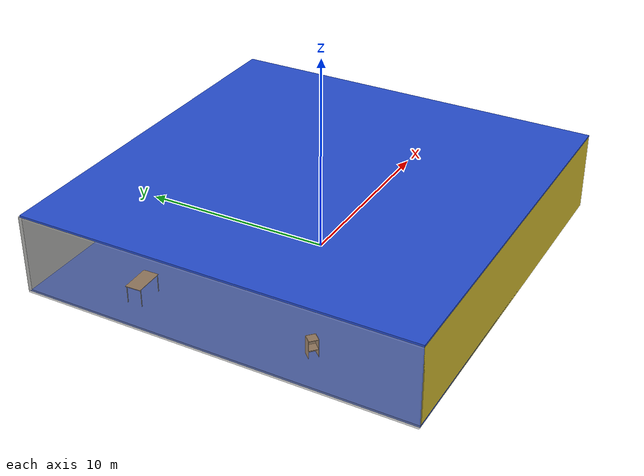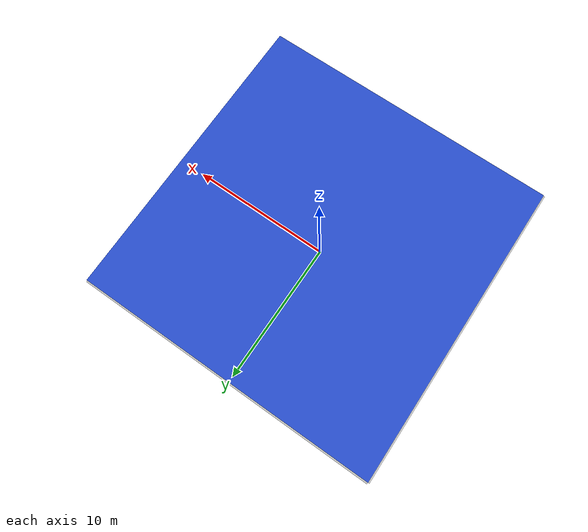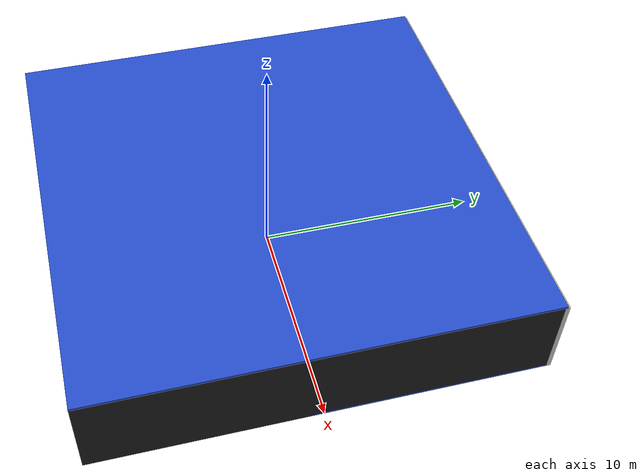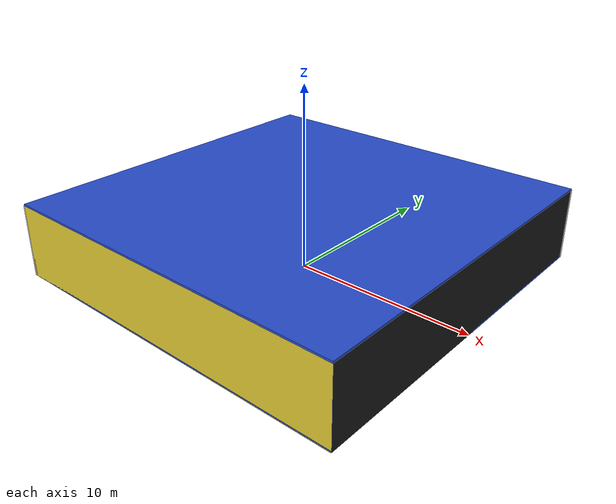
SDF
<sdf version="1.4">
 <world name="default">
  <physics type="ode">
   <max_step_size>0.001</max_step_size>
   <real_time_factor>1</real_time_factor>
   <real_time_update_rate>1000</real_time_update_rate>
   <gravity>0 0 -9.8</gravity>
  </physics>
  <scene><ambient>0.4 0.4 0.4 1</ambient><background>0.7 0.7 0.7 1</background><shadows>1</shadows></scene>
  <model name="Surrounding">
   <static>1</static>
   <link name="Ceiling">
    <collision name="Ceiling_Collision"><geometry><box><size>20 20 0.1</size></box></geometry></collision>
    <visual name="Ceiling_Visual">
     <geometry><box><size>20 20 0.1</size></box></geometry>
     <material>
      <script><uri>file://media/materials/scripts/gazebo.material</uri><name>Gazebo/BlueGlow</name></script>
     </material>
    </visual>
    <pose>0 0 4.05 0 0 0</pose>
   </link>
   <link name="Wall_South">
    <collision name="Wall_South_Collision">
     <geometry><box><size>20 0 4</size></box></geometry>
     <pose>0 0 2 0 -0 0</pose>
    </collision>
    <visual name="Wall_South_Visual">
     <pose>0 0 2 0 -0 0</pose>
     <geometry><box><size>20 0 4</size></box></geometry>
     <material>
      <script><uri>file://media/materials/scripts/gazebo.material</uri><name>Gazebo/ZincYellow</name></script>
     </material>
    </visual>
    <velocity_decay><linear>0</linear><angular>0</angular></velocity_decay>
    <pose>0 -10 0 0 -0 0</pose>
   </link>
   <link name="Wall_East">
    <collision name="Wall_21_Collision">
     <geometry><box><size>20 0 4</size></box></geometry>
     <pose>0 0 2 0 -0 0</pose>
    </collision>
    <visual name="Wall_21_Visual">
     <pose>0 0 2 0 -0 0</pose>
     <geometry><box><size>20 0 4</size></box></geometry>
     <material>
      <script><uri>file://media/materials/scripts/gazebo.material</uri><name>Gazebo/FlatBlack</name></script>
     </material>
    </visual>
    <velocity_decay><linear>0</linear><angular>0</angular></velocity_decay>
    <pose>10 0 0 0 -0 1.5708</pose>
   </link>
   <link name="Wall_North">
    <collision name="Wall_22_Collision">
     <geometry><box><size>20 0.2 4</size></box></geometry>
     <pose>0 0 2 0 -0 0</pose>
    </collision>
    <visual name="Wall_22_Visual">
     <pose>0 0 2 0 -0 0</pose>
     <geometry><box><size>20 0.2 4</size></box></geometry>
     <material>
      <script><uri>file://media/materials/scripts/gazebo.material</uri><name>Gazebo/CeilingTiled</name></script>
     </material>
    </visual>
    <velocity_decay><linear>0</linear><angular>0</angular></velocity_decay>
    <pose>0 10 0 0 -0 0</pose>
   </link>
   <link name="Wall_West">
    <collision name="Wall_23_Collision">
     <geometry><box><size>20 0.2 4</size></box></geometry>
     <pose>0 0 2 0 -0 0</pose>
    </collision>
    <visual name="Wall_23_Visual">
     <pose>0 0 2 0 -0 0</pose>
     <geometry><box><size>20 0.2 4</size></box></geometry>
     <material>
      <script><uri>file://media/materials/scripts/gazebo.material</uri><name>Gazebo/GreyTransparent</name></script>
     </material>
    </visual>
    <velocity_decay><linear>0</linear><angular>0</angular></velocity_decay>
    <pose>-10 0 0 0 0 -1.5708</pose>
   </link>
   <link name="Ground_link">
    <collision name="collision">
     <pose>0 0 .05 0 -0 0</pose>
     <geometry><box><size>20 20 0.1</size></box></geometry>
    </collision>
    <visual name="visual">
     <pose>0 0 .05 0 -0 0</pose>
     <geometry><box><size>20 20 0.1</size></box></geometry>
     <material>
      <script><uri>file://media/materials/scripts/gazebo.material</uri><name>Gazebo/BlueLaser</name></script>
     </material>
    </visual>
   </link>
   <static>1</static>
  </model>
  <spherical_coordinates>
   <surface_model>EARTH_WGS84</surface_model>
   <latitude_deg>0</latitude_deg>
   <longitude_deg>0</longitude_deg>
   <elevation>0</elevation>
   <heading_deg>0</heading_deg>
  </spherical_coordinates>
  <light name="lightball_0" type="diffuse">
   <diffuse>0.8 0.8 0.8 1</diffuse>
   <specular>0.2 0.2 0.2 1</specular>
   <attenuation>
    <range>100</range>
    <constant>0.7</constant>
    <linear>0.01</linear>
    <quadratic>0.001</quadratic>
   </attenuation>
   <direction>-0.5 0.1 -0.9</direction>
   <pose>3.79000957891 7.24930203835 3.64875858617 0 0 0</pose>
  </light>
  <light name="lightball_1" type="diffuse">
   <diffuse>0.8 0.8 0.8 1</diffuse>
   <specular>0.2 0.2 0.2 1</specular>
   <attenuation>
    <range>100</range>
    <constant>0.7</constant>
    <linear>0.01</linear>
    <quadratic>0.001</quadratic>
   </attenuation>
   <direction>-0.5 0.1 -0.9</direction>
   <pose>6.70375144997 -0.203856949543 2.40945621388 0 0 0</pose>
  </light>
  <light name="lightball_2" type="diffuse">
   <diffuse>0.8 0.8 0.8 1</diffuse>
   <specular>0.2 0.2 0.2 1</specular>
   <attenuation>
    <range>100</range>
    <constant>0.7</constant>
    <linear>0.01</linear>
    <quadratic>0.001</quadratic>
   </attenuation>
   <direction>-0.5 0.1 -0.9</direction>
   <pose>-5.19576325831 -2.95219594334 2.34113002918 0 0 0</pose>
  </light>
  <include><uri>model://cabinet</uri><pose>-8.05094145501 -3.98393761004 0 0 0 0.822741563429</pose></include>
  <include><uri>model://table</uri><pose>-7.96010215349 5.00120348285 0 0 0 0.0323337058129</pose></include>
  <include>
   <uri>model://construction_cone</uri>
   <pose>-3.99601317425 -1.99402172859 0 0 0 2.15102292143</pose>
  </include>
  <include><uri>model://cabinet</uri><pose>-1.07992107423 -7.77385683641 0 0 0 2.87506760043</pose></include>
  <include>
   <uri>model://robocup_3Dsim_goal</uri>
   <pose>-1.03152023283 1.79302490444 0 0 0 1.48839504922</pose>
  </include>
  <include>
   <uri>model://textured_shapes</uri>
   <pose>-1.45792484948 7.68894650583 0 0 0 1.7196436809</pose>
  </include>
  <include>
   <uri>model://construction_cone</uri>
   <pose>6.97482221798 -6.96864054851 0 0 0 1.71421908162</pose>
  </include>
  <include><uri>model://cabinet</uri><pose>8.13477761837 7.18343067195 0 0 0 2.56593703962</pose></include>
 </world>
</sdf>

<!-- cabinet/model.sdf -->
<sdf version="1.5">
  <model name="cabinet">
    <static>true</static>
    <link name="cabinet_bottom_plate">
      <inertial>
        <pose>0 0 -1 0 0 0</pose>
        <inertia>
          <ixx>2.050000</ixx>
          <ixy>0</ixy>
          <ixz>0</ixz>
          <iyy>2.050000</iyy>
          <iyz>0</iyz>
          <izz>2.050000</izz>
        </inertia>
        <mass>25.000000</mass>
      </inertial>
      <collision name="cabinet_bottom_plate_geom">
        <pose>0 0 0.010000 0 0 0</pose>
        <geometry>
          <box>
            <size>0.450000 0.450000 0.020000</size>
          </box>
        </geometry>
      </collision>
      <visual name="cabinet_bottom_plate_geom_visual">
        <pose>0 0 0.010000 0 0 0</pose>
        <geometry>
          <box>
            <size>0.450000 0.450000 0.020000</size>
          </box>
        </geometry>
        <material>
          <script>
            <uri>model://media/materials/scripts/gazebo.material</uri>
            <name>Gazebo/Wood</name>
          </script>
        </material>
      </visual>
      <collision name="cabinet_bottom_plate_geom_cabinet_back_plate">
        <pose>0.235000 0 0.510000 0 0 0</pose>
        <geometry>
          <box>
            <size>0.020000 0.450000 1.020000</size>
          </box>
        </geometry>
      </collision>
      <visual name="cabinet_bottom_plate_geom_cabinet_back_plate_visual">
        <pose>0.235000 0 0.510000 0 0 0</pose>
        <geometry>
          <box>
            <size>0.020000 0.450000 1.020000</size>
          </box>
        </geometry>
        <material>
          <script>
            <uri>model://media/materials/scripts/gazebo.material</uri>
            <name>Gazebo/Wood</name>
          </script>
        </material>
      </visual>
      <collision name="cabinet_bottom_plate_geom_cabinet_left_plate">
        <pose>0 0.235000 0.510000 0 0 0</pose>
        <geometry>
          <box>
            <size>0.450000 0.020000 1.020000</size>
          </box>
        </geometry>
      </collision>
      <visual name="cabinet_bottom_plate_geom_cabinet_left_plate_visual">
        <pose>0 0.235000 0.510000 0 0 0</pose>
        <geometry>
          <box>
            <size>0.450000 0.020000 1.020000</size>
          </box>
        </geometry>
        <material>
          <script>
            <uri>model://media/materials/scripts/gazebo.material</uri>
            <name>Gazebo/Wood</name>
          </script>
        </material>
      </visual>
      <collision name="cabinet_bottom_plate_geom_cabinet_middle_plate">
        <pose>0 0 0.510000 0 0 0</pose>
        <geometry>
          <box>
            <size>0.450000 0.450000 0.020000</size>
          </box>
        </geometry>
      </collision>
      <visual name="cabinet_bottom_plate_geom_cabinet_middle_plate_visual">
        <pose>0 0 0.510000 0 0 0</pose>
        <geometry>
          <box>
            <size>0.450000 0.450000 0.020000</size>
          </box>
        </geometry>
        <material>
          <script>
            <uri>model://media/materials/scripts/gazebo.material</uri>
            <name>Gazebo/Wood</name>
          </script>
        </material>
      </visual>
      <collision name="cabinet_bottom_plate_geom_cabinet_right_plate">
        <pose>0 -0.235000 0.510000 0 0 0</pose>
        <geometry>
          <box>
            <size>0.450000 0.020000 1.020000</size>
          </box>
        </geometry>
      </collision>
      <visual name="cabinet_bottom_plate_geom_cabinet_right_plate_visual">
        <pose>0 -0.235000 0.510000 0 0 0</pose>
        <geometry>
          <box>
            <size>0.450000 0.020000 1.020000</size>
          </box>
        </geometry>
        <material>
          <script>
            <uri>model://media/materials/scripts/gazebo.material</uri>
            <name>Gazebo/Wood</name>
          </script>
        </material>
      </visual>
      <collision name="cabinet_bottom_plate_geom_cabinet_top_plate">
        <pose>0 0 1.010000 0 0 0</pose>
        <geometry>
          <box>
            <size>0.450000 0.450000 0.020000</size>
          </box>
        </geometry>
      </collision>
      <visual name="cabinet_bottom_plate_geom_cabinet_top_plate_visual">
        <pose>0 0 1.010000 0 0 0</pose>
        <geometry>
          <box>
            <size>0.450000 0.450000 0.020000</size>
          </box>
        </geometry>
        <material>
          <script>
            <uri>model://media/materials/scripts/gazebo.material</uri>
            <name>Gazebo/Wood</name>
          </script>
        </material>
      </visual>
    </link>
  </model>
</sdf>

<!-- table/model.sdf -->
<sdf version="1.5">
  <model name="table">
    <static>true</static>
    <link name="link">
      <collision name="surface">
        <pose>0 0 1.0 0 0 0</pose>
        <geometry>
          <box>
            <size>1.5 0.8 0.03</size>
          </box>
        </geometry>
        <surface>
          <friction>
            <ode>
              <mu>0.6</mu>
              <mu2>0.6</mu2>
            </ode>
          </friction>
        </surface>
      </collision>
      <visual name="visual1">
        <pose>0 0 1.0 0 0 0</pose>
        <geometry>
          <box>
            <size>1.5 0.8 0.03</size>
          </box>
        </geometry>
        <material>
          <script>
            <uri>model://media/materials/scripts/gazebo.material</uri>
            <name>Gazebo/Wood</name>
          </script>
        </material>
      </visual>
      <collision name="front_left_leg">
        <pose>0.68 0.38 0.5 0 0 0</pose>
        <geometry>
          <cylinder>
            <radius>0.02</radius>
            <length>1.0</length>
          </cylinder>
        </geometry>
      </collision>
      <visual name="front_left_leg">
        <pose>0.68 0.38 0.5 0 0 0</pose>
        <geometry>
          <cylinder>
            <radius>0.02</radius>
            <length>1.0</length>
          </cylinder>
        </geometry>
        <material>
          <script>
            <uri>model://media/materials/scripts/gazebo.material</uri>
            <name>Gazebo/Grey</name>
          </script>
        </material>
      </visual>
      <collision name="front_right_leg">
        <pose>0.68 -0.38 0.5 0 0 0</pose>
        <geometry>
          <cylinder>
            <radius>0.02</radius>
            <length>1.0</length>
          </cylinder>
        </geometry>
      </collision>
      <visual name="front_right_leg">
        <pose>0.68 -0.38 0.5 0 0 0</pose>
        <geometry>
          <cylinder>
            <radius>0.02</radius>
            <length>1.0</length>
          </cylinder>
        </geometry>
        <material>
          <script>
            <uri>model://media/materials/scripts/gazebo.material</uri>
            <name>Gazebo/Grey</name>
          </script>
        </material>
      </visual>
      <collision name="back_right_leg">
        <pose>-0.68 -0.38 0.5 0 0 0</pose>
        <geometry>
          <cylinder>
            <radius>0.02</radius>
            <length>1.0</length>
          </cylinder>
        </geometry>
      </collision>
      <visual name="back_right_leg">
        <pose>-0.68 -0.38 0.5 0 0 0</pose>
        <geometry>
          <cylinder>
            <radius>0.02</radius>
            <length>1.0</length>
          </cylinder>
        </geometry>
        <material>
          <script>
            <uri>model://media/materials/scripts/gazebo.material</uri>
            <name>Gazebo/Grey</name>
          </script>
        </material>
      </visual>
      <collision name="back_left_leg">
        <pose>-0.68 0.38 0.5 0 0 0</pose>
        <geometry>
          <cylinder>
            <radius>0.02</radius>
            <length>1.0</length>
          </cylinder>
        </geometry>
      </collision>
      <visual name="back_left_leg">
        <pose>-0.68 0.38 0.5 0 0 0</pose>
        <geometry>
          <cylinder>
            <radius>0.02</radius>
            <length>1.0</length>
          </cylinder>
        </geometry>
        <material>
          <script>
            <uri>model://media/materials/scripts/gazebo.material</uri>
            <name>Gazebo/Grey</name>
          </script>
        </material>
      </visual>
    </link>
  </model>
</sdf>

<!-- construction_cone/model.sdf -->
<sdf version="1.5">
  <model name="Construction Cone">
    <link name="link">
      <collision name="collision">
        <geometry>
          <mesh>
            <scale>10 10 10</scale>
            <uri>file://isr-testbed/construction_cone/meshes/construction_cone.dae</uri>
          </mesh>
        </geometry>
      </collision>
      <visual name="visual">
        <geometry>
          <mesh>
            <scale>10 10 10</scale>
            <uri>file://isr-testbed/construction_cone/meshes/construction_cone.dae</uri>
          </mesh>
        </geometry>
      </visual>
    </link>
  </model>
</sdf>

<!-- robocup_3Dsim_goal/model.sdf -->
<sdf version="1.5">
  <model name="robocup_3d_goal">
    <static>true</static>
    <link name="left_post">
      <pose>0 1.05 0.45 0 0 0</pose>
      <collision name="collision">
        <geometry>
          <cylinder>
            <radius>0.05</radius>
            <length>0.9</length>
          </cylinder>
        </geometry>
      </collision>
      <visual name="visual">
        <geometry>
          <cylinder>
            <radius>0.05</radius>
            <length>0.9</length>
          </cylinder>
        </geometry>
        <material>
          <script>
            <uri>file://media/materials/scripts/gazebo.material</uri>
            <name>Gazebo/ZincYellow</name>
          </script>
        </material>
      </visual>
    </link>
    <link name="left_support_horiz_lower">
      <pose>0.30 1.05 0.01 0 0 0</pose>
      <collision name="collision">
        <geometry>
          <box>
            <size>0.50 0.02 0.02</size>
          </box>
        </geometry>
      </collision>
      <visual name="visual">
        <geometry>
          <box>
            <size>0.50 0.02 0.02</size>
          </box>
        </geometry>
        <material>
          <script>
            <uri>file://media/materials/scripts/gazebo.material</uri>
            <name>Gazebo/White</name>
          </script>
        </material>
      </visual>
    </link>
    <link name="left_support_horiz_upper">
      <pose>0.30 1.05 0.79 0 0 0</pose>
      <collision name="collision">
        <geometry>
          <box>
            <size>0.50 0.02 0.02</size>
          </box>
        </geometry>
      </collision>
      <visual name="visual">
        <geometry>
          <box>
            <size>0.50 0.02 0.02</size>
          </box>
        </geometry>
        <material>
          <script>
            <uri>file://media/materials/scripts/gazebo.material</uri>
            <name>Gazebo/White</name>
          </script>
        </material>
      </visual>
    </link>
    <link name="left_support_vertical">
      <pose>0.56 1.05 0.4 0 1.5708 0</pose>
      <collision name="collision">
        <geometry>
          <box>
            <size>0.80 0.02 0.02</size>
          </box>
        </geometry>
      </collision>
      <visual name="visual">
        <geometry>
          <box>
            <size>0.80 0.02 0.02</size>
          </box>
        </geometry>
        <material>
          <script>
            <uri>file://media/materials/scripts/gazebo.material</uri>
            <name>Gazebo/White</name>
          </script>
        </material>
      </visual>
    </link>
    <link name="right_support_horiz_lower">
      <pose>0.30 -1.05 0.01 0 0 0</pose>
      <collision name="collision">
        <geometry>
          <box>
            <size>0.50 0.02 0.02</size>
          </box>
        </geometry>
      </collision>
      <visual name="visual">
        <geometry>
          <box>
            <size>0.50 0.02 0.02</size>
          </box>
        </geometry>
        <material>
          <script>
            <uri>file://media/materials/scripts/gazebo.material</uri>
            <name>Gazebo/White</name>
          </script>
        </material>
      </visual>
    </link>
    <link name="right_support_horiz_upper">
      <pose>0.30 -1.05 0.79 0 0 0</pose>
      <collision name="collision">
        <geometry>
          <box>
            <size>0.50 0.02 0.02</size>
          </box>
        </geometry>
      </collision>
      <visual name="visual">
        <geometry>
          <box>
            <size>0.50 0.02 0.02</size>
          </box>
        </geometry>
        <material>
          <script>
            <uri>file://media/materials/scripts/gazebo.material</uri>
            <name>Gazebo/White</name>
          </script>
        </material>
      </visual>
    </link>
    <link name="right_support_vertical">
      <pose>0.56 -1.05 0.4 0 1.5708 0</pose>
      <collision name="collision">
        <geometry>
          <box>
            <size>0.80 0.02 0.02</size>
          </box>
        </geometry>
      </collision>
      <visual name="visual">
        <geometry>
          <box>
            <size>0.80 0.02 0.02</size>
          </box>
        </geometry>
        <material>
          <script>
            <uri>file://media/materials/scripts/gazebo.material</uri>
            <name>Gazebo/White</name>
          </script>
        </material>
      </visual>
    </link>
    <link name="center_support_horiz_lower">
      <pose>0.56 0 0.01 0 1.5708 0</pose>
      <collision name="collision">
        <geometry>
          <box>
            <size>0.02 2.08 0.02</size>
          </box>
        </geometry>
      </collision>
      <visual name="visual">
        <geometry>
          <box>
            <size>0.02 2.08 0.02</size>
          </box>
        </geometry>
        <material>
          <script>
            <uri>file://media/materials/scripts/gazebo.material</uri>
            <name>Gazebo/White</name>
          </script>
        </material>
      </visual>
    </link>
    <link name="center_support_horiz_upper">
      <pose>0.56 0 0.79 0 1.5708 0</pose>
      <collision name="collision">
        <geometry>
          <box>
            <size>0.02 2.08 0.02</size>
          </box>
        </geometry>
      </collision>
      <visual name="visual">
        <geometry>
          <box>
            <size>0.02 2.08 0.02</size>
          </box>
        </geometry>
        <material>
          <script>
            <uri>file://media/materials/scripts/gazebo.material</uri>
            <name>Gazebo/White</name>
          </script>
        </material>
      </visual>
    </link>
    <link name="right_post">
      <pose>0 -1.05 0.45 0 0 0</pose>
      <collision name="collision">
        <geometry>
          <cylinder>
            <radius>0.05</radius>
            <length>0.9</length>
          </cylinder>
        </geometry>
      </collision>
      <visual name="visual">
        <geometry>
          <cylinder>
            <radius>0.05</radius>
            <length>0.9</length>
          </cylinder>
        </geometry>
        <material>
          <script>
            <uri>file://media/materials/scripts/gazebo.material</uri>
            <name>Gazebo/ZincYellow</name>
          </script>
        </material>
      </visual>
    </link>
    <link name="crossbar">
      <pose>0 0 0.85 1.57 1.57 0</pose>
      <collision name="collision">
        <geometry>
          <cylinder>
            <radius>0.05</radius>
            <length>2.0</length>
          </cylinder>
        </geometry>
      </collision>
      <visual name="visual">
        <geometry>
          <cylinder>
            <radius>0.05</radius>
            <length>2.0</length>
          </cylinder>
        </geometry>
        <material>
          <script>
            <uri>file://media/materials/scripts/gazebo.material</uri>
            <name>Gazebo/ZincYellow</name>
          </script>
        </material>
      </visual>
    </link>
    <link name="center_net">
      <pose>0.56 0 0.40 0 0 0</pose>
      <collision name="collision">
        <geometry>
          <box>
            <size>0.01 2.1 0.80</size>
          </box>
        </geometry>
      </collision>
      <visual name="visual">
        <geometry>
          <box>
            <size>0.01 2.1 0.80</size>
          </box>
        </geometry>
        <material>
          <script>
            <uri>model://../model_source/models/robocup09_spl_field/materials/scripts/</uri>
            <uri>model://../model_source/models/robocup09_spl_field/materials/textures/</uri>
            <name>RoboCup/Net</name>
          </script>
        </material>
      </visual>
    </link>
    <link name="left_net">
      <pose>0.30 1.05 0.40 0 0 0</pose>
      <collision name="collision">
        <geometry>
          <box>
            <size>0.50 0.01 0.76</size>
          </box>
        </geometry>
      </collision>
      <visual name="visual">
        <geometry>
          <box>
            <size>0.50 0.01 0.76</size>
          </box>
        </geometry>
        <material>
          <script>
            <uri>model://../model_source/models/robocup09_spl_field/materials/scripts/</uri>
            <uri>model://../model_source/models/robocup09_spl_field/materials/textures/</uri>
            <name>RoboCup/Net</name>
          </script>
        </material>
      </visual>
    </link>
    <link name="right_net">
      <pose>0.30 -1.05 0.40 0 0 0</pose>
      <collision name="collision">
        <geometry>
          <box>
            <size>0.50 0.01 0.76</size>
          </box>
        </geometry>
      </collision>
      <visual name="visual">
        <geometry>
          <box>
            <size>0.50 0.01 0.76</size>
          </box>
        </geometry>
        <material>
          <script>
            <uri>model://../model_source/models/robocup09_spl_field/materials/scripts/</uri>
            <uri>model://../model_source/models/robocup09_spl_field/materials/textures/</uri>
            <name>RoboCup/Net</name>
          </script>
        </material>
      </visual>
    </link>
  </model>
</sdf>

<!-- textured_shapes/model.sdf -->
<sdf version="1.6">
  <model name="textured_shapes">
    <pose>0 0 0.5 0 0 0</pose>
    <link name="box">
      <pose>0 -1.5 0 0 0 0</pose>
      <collision name="collision">
        <geometry>
          <box>
            <size>1 1 1</size>
          </box>
        </geometry>
      </collision>
      <visual name="visual">
        <geometry>
          <box>
            <size>1 1 1</size>
          </box>
        </geometry>
        <material>
          <script>
            <uri>model://../model_source/models/textured_shapes/materials/scripts</uri>
            <uri>model://../model_source/models/textured_shapes/materials/textures</uri>
            <name>TexturedShape/Squares</name>
          </script>
        </material>
      </visual>
    </link>
    <link name="sphere">
      <collision name="collision">
        <geometry>
          <sphere>
            <radius>0.5</radius>
          </sphere>
        </geometry>
      </collision>
      <visual name="visual">
        <geometry>
          <sphere>
            <radius>0.5</radius>
          </sphere>
        </geometry>
        <material>
          <script>
            <uri>model://../model_source/models/textured_shapes/materials/scripts</uri>
            <uri>model://../model_source/models/textured_shapes/materials/textures</uri>
            <name>TexturedShape/Squares</name>
          </script>
        </material>
      </visual>
    </link>
    <link name="cylinder">
      <pose>0 1.5 0 0 0 0</pose>
      <collision name="collision">
        <geometry>
          <cylinder>
            <radius>0.5</radius>
            <length>1</length>
          </cylinder>
        </geometry>
      </collision>
      <visual name="visual">
        <geometry>
          <cylinder>
            <radius>0.5</radius>
            <length>1</length>
          </cylinder>
        </geometry>
        <material>
          <script>
            <uri>model://../model_source/models/textured_shapes/materials/scripts</uri>
            <uri>model://../model_source/models/textured_shapes/materials/textures</uri>
            <name>TexturedShape/Squares</name>
          </script>
        </material>
      </visual>
    </link>
  </model>
</sdf>
